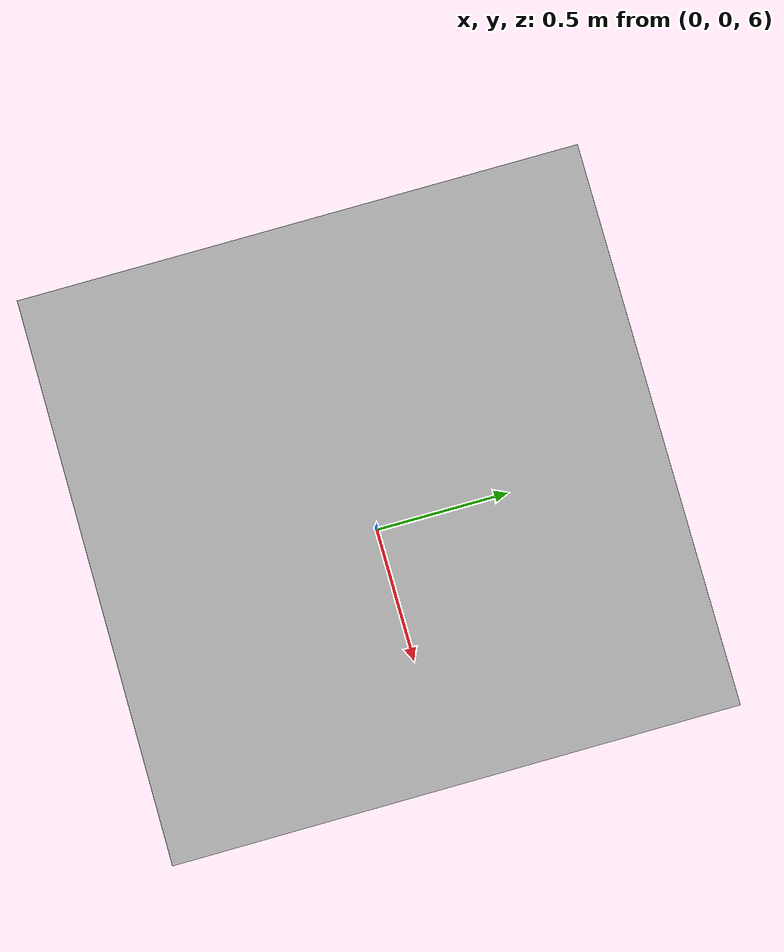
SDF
<?xml version="1.0" ?>
<sdf version='1.6'>
<model name="SimpleBox">
   <pose frame=''>0 0 7.0 0 0 0</pose>
   <static>1</static>
   <link name="SimpleBoxlink">
     <visual name="SimpleBoxlinkVisual">
        <geometry>
          <box>
            <size>1.6 1.6 1.6</size>
          </box>
        </geometry>
        <material>
          <ambient>0.7 0.7 0.7 1.0</ambient>
        </material>
      </visual>
      <collision name="SimpleBoxlinkCollision">
        <geometry>
          <box>
            <size>1.6 1.6 1.6</size>
          </box>
        </geometry>
      </collision>
    </link>
  </model>
</sdf>
